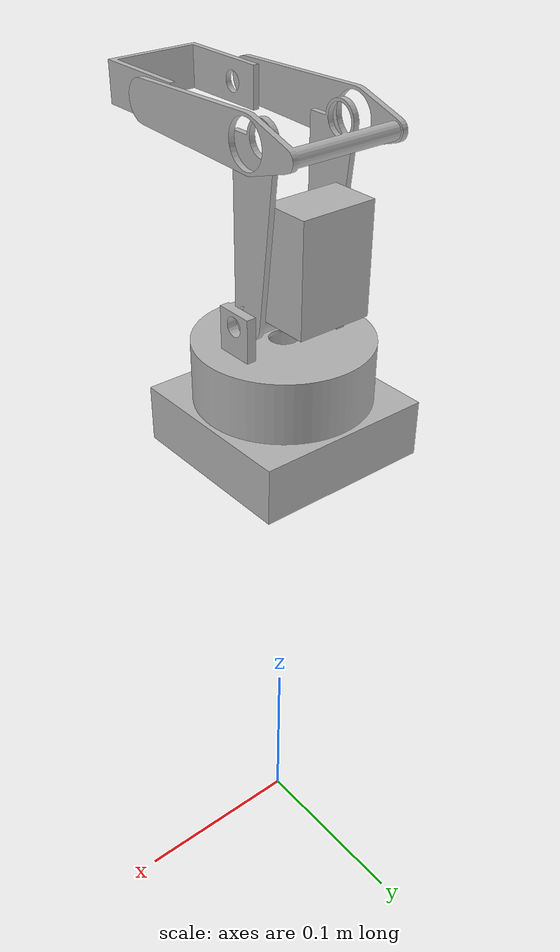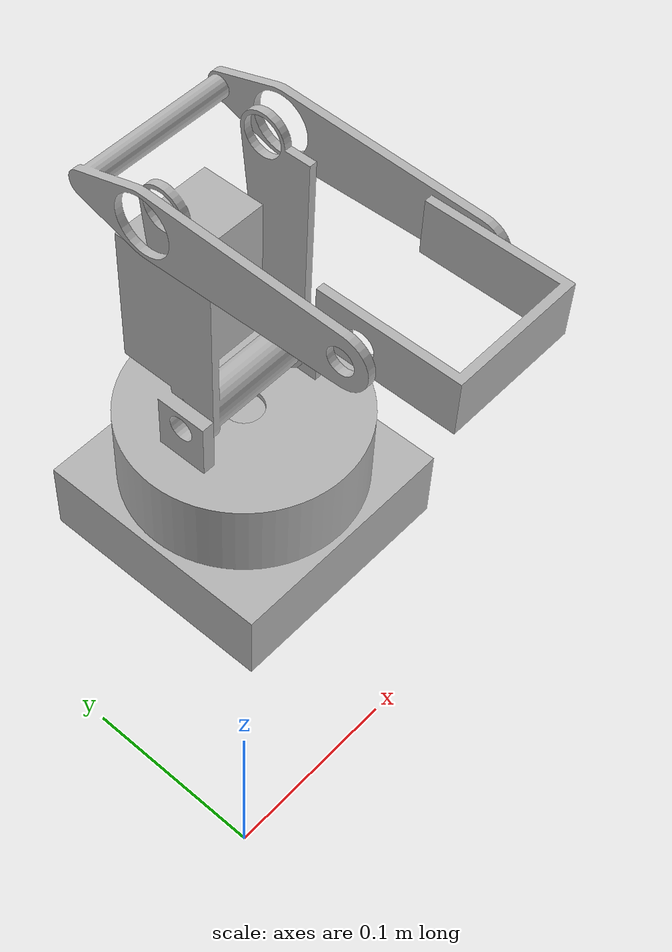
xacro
<?xml version="1.0" ?>
<robot name="urdf_simplified" xmlns:xacro="http://www.ros.org/wiki/xacro">

<xacro:include filename="$(find urdf_simplified_description)/urdf/materials.xacro" />
<xacro:include filename="$(find urdf_simplified_description)/urdf/urdf_simplified.trans" />
<xacro:include filename="$(find urdf_simplified_description)/urdf/urdf_simplified.gazebo" />
<link name="world">
  <visual>
  <origin rpy="0 0 0" xyz="0 0 0" />
    <geometry>
       <box size="0.000008 0.000008 0.000003"/>
    </geometry>
  </visual>
</link>
<link name="base_link">
    <inertial>
    <origin xyz="-5.700880775444023e-15 -2.3388228822334454e-17 -0.008539058485288596" rpy="0 0 0"/>
    <mass value="0.05152508507605951"/>
    <inertia ixx="6.5e-05" iyy="6.5e-05" izz="0.000121" ixy="-0.0" iyz="-0.0" ixz="0.0"/>
  </inertial>
  <visual>
    <origin xyz="0 0 0" rpy="0 0 0"/>
    <geometry>
      <mesh filename="package://urdf_simplified_description/meshes/base_link.stl" scale="0.001 0.001 0.001"/>
    </geometry>
    <material name="silver"/>
  </visual>
  <collision>
    <origin xyz="0 0 0" rpy="0 0 0"/>
    <geometry>
      <mesh filename="package://urdf_simplified_description/meshes/base_link.stl" scale="0.001 0.001 0.001"/>
    </geometry>
  </collision>
</link>

<link name="Component2_1">
  <inertial>
    <origin xyz="6.754288398751157e-10 8.062612255736307e-08 0.022293335424730373" rpy="0 0 0"/>
    <mass value="0.04301828993424946"/>
    <inertia ixx="3.8e-05" iyy="4e-05" izz="6.6e-05" ixy="0.0" iyz="-0.0" ixz="-0.0"/>
  </inertial>
  <visual>
    <origin xyz="-0.0 -0.0 -0.002" rpy="0 0 0"/>
    <geometry>
      <mesh filename="package://urdf_simplified_description/meshes/Component2_1.stl" scale="0.001 0.001 0.001"/>
    </geometry>
    <material name="silver"/>
  </visual>
  <collision>
    <origin xyz="-0.0 -0.0 -0.002" rpy="0 0 0"/>
    <geometry>
      <mesh filename="package://urdf_simplified_description/meshes/Component2_1.stl" scale="0.001 0.001 0.001"/>
    </geometry>
  </collision>
</link>

<link name="Component3_1">
  <inertial>
    <origin xyz="-0.026 0.016858904245414866 0.029830953320340817" rpy="0 0 0"/>
    <mass value="0.07759761667831801"/>
    <inertia ixx="4.1e-05" iyy="4.5e-05" izz="2.4e-05" ixy="-0.0" iyz="-2e-06" ixz="-0.0"/>
  </inertial>
  <visual>
    <origin xyz="-0.025 -0.0 -0.049" rpy="0 0 0"/>
    <geometry>
      <mesh filename="package://urdf_simplified_description/meshes/Component3_1.stl" scale="0.001 0.001 0.001"/>
    </geometry>
    <material name="silver"/>
  </visual>
  <collision>
    <origin xyz="-0.025 -0.0 -0.049" rpy="0 0 0"/>
    <geometry>
      <mesh filename="package://urdf_simplified_description/meshes/Component3_1.stl" scale="0.001 0.001 0.001"/>
    </geometry>
  </collision>
</link>

<link name="Component4_1">
  <inertial>
    <origin xyz="-0.021515666357247706 -0.022058729538877265 -3.5313233675560163e-06" rpy="0 0 0"/>
    <mass value="0.015212282444311782"/>
    <inertia ixx="1.9e-05" iyy="1.2e-05" izz="3e-05" ixy="0.0" iyz="-0.0" ixz="0.0"/>
  </inertial>
  <visual>
    <origin xyz="-0.021 -0.01 -0.134" rpy="0 0 0"/>
    <geometry>
      <mesh filename="package://urdf_simplified_description/meshes/Component4_1.stl" scale="0.001 0.001 0.001"/>
    </geometry>
    <material name="silver"/>
  </visual>
  <collision>
    <origin xyz="-0.021 -0.01 -0.134" rpy="0 0 0"/>
    <geometry>
      <mesh filename="package://urdf_simplified_description/meshes/Component4_1.stl" scale="0.001 0.001 0.001"/>
    </geometry>
  </collision>
</link>

<link name="Component5_1">
  <inertial>
    <origin xyz="0.031149448590471997 -0.01645251032308831 0.0003726711981377473" rpy="0 0 0"/>
    <mass value="0.008845043566948384"/>
    <inertia ixx="3e-06" iyy="4e-06" izz="6e-06" ixy="-0.0" iyz="-0.0" ixz="0.0"/>
  </inertial>
  <visual>
    <origin xyz="0.03 0.065 -0.133991" rpy="0 0 0"/>
    <geometry>
      <mesh filename="package://urdf_simplified_description/meshes/Component5_1.stl" scale="0.001 0.001 0.001"/>
    </geometry>
    <material name="silver"/>
  </visual>
  <collision>
    <origin xyz="0.03 0.065 -0.133991" rpy="0 0 0"/>
    <geometry>
      <mesh filename="package://urdf_simplified_description/meshes/Component5_1.stl" scale="0.001 0.001 0.001"/>
    </geometry>
  </collision>
</link>

<joint name="base_link__link" type="fixed">
    <axis xyz="0 0 1"/>
    <origin rpy="0 0 0" xyz="0 0 0.3"/>
    <parent link="world"/>
    <child link="base_link"/>
 </joint>
<joint name="Revolute 1" type="revolute">
  <origin xyz="0.0 0.0 0.002" rpy="0 0 0"/>
  <limit effort="10.0" lower="-3.14" upper="3.14" velocity="0.0"/>
  <parent link="base_link"/>
  <child link="Component2_1"/>
  <axis xyz="0.0 0.0 -1.0"/>
</joint>

<joint name="Revolute 2" type="revolute">
  <origin xyz="0.025 0.0 0.047" rpy="0 0 0"/>
  <limit effort="10.0" lower="-3.14" upper="3.14" velocity="0.0"/>
  <parent link="Component2_1"/>
  <child link="Component3_1"/>
  <axis xyz="1.0 0.0 0.0"/>
</joint>

<joint name="Revolute 3" type="revolute">
  <origin xyz="-0.004 0.01 0.085" rpy="0 0 0"/>
  <limit effort="10.0" lower="-3.14" upper="3.14" velocity="0.0"/>
  <parent link="Component3_1"/>
  <child link="Component4_1"/>
  <axis xyz="-1.0 0.0 0.0"/>
</joint>

<joint name="Revolute 4" type="revolute">
  <origin xyz="-0.051 -0.075 -9e-06" rpy="0 0 0"/>
  <limit effort="10.0" lower="-3.14" upper="3.14" velocity="0.0"/>
  <parent link="Component4_1"/>
  <child link="Component5_1"/>
  <axis xyz="-1.0 0.0 0.0"/>
</joint>

</robot>

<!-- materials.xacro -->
<robot name="urdf_simplified" xmlns:xacro="http://www.ros.org/wiki/xacro" >

<material name="silver">
  <color rgba="0.700 0.700 0.700 1.000"/>
</material>

</robot>

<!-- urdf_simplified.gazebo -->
<robot name="urdf_simplified" xmlns:xacro="http://www.ros.org/wiki/xacro" >

<xacro:property name="body_color" value="Gazebo/Silver" />

<gazebo>
  <plugin name="control" filename="libgazebo_ros_control.so"/>
</gazebo>
<gazebo reference="base_link">
  <material>${body_color}</material>
  <mu1>0.2</mu1>
  <mu2>0.2</mu2>
  <selfCollide>true</selfCollide>
  <gravity>true</gravity>
</gazebo>

<gazebo reference="Component2_1">
  <material>${body_color}</material>
  <mu1>0.2</mu1>
  <mu2>0.2</mu2>
  <selfCollide>true</selfCollide>
</gazebo>

<gazebo reference="Component3_1">
  <material>${body_color}</material>
  <mu1>0.2</mu1>
  <mu2>0.2</mu2>
  <selfCollide>true</selfCollide>
</gazebo>

<gazebo reference="Component4_1">
  <material>${body_color}</material>
  <mu1>0.2</mu1>
  <mu2>0.2</mu2>
  <selfCollide>true</selfCollide>
</gazebo>

<gazebo reference="Component5_1">
  <material>${body_color}</material>
  <mu1>0.2</mu1>
  <mu2>0.2</mu2>
  <selfCollide>true</selfCollide>
</gazebo>

</robot>
